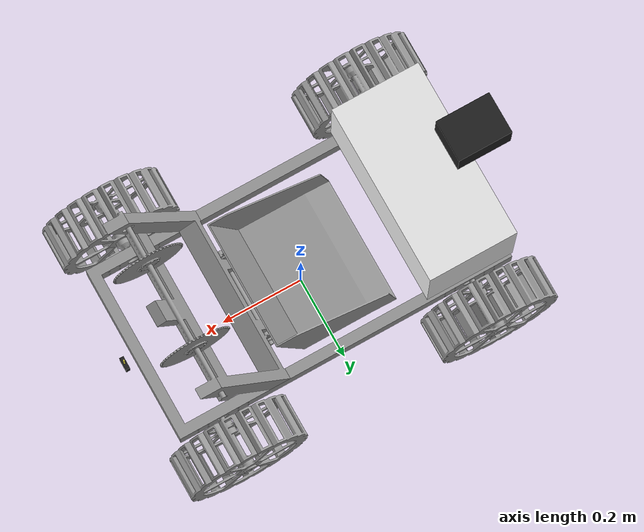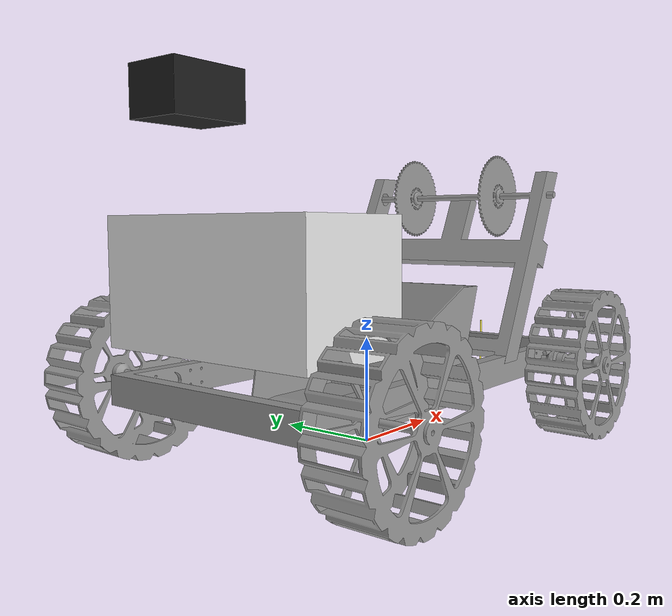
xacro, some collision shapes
<?xml version="1.0"?>
<robot xmlns:xacro="http://www.ros.org/wiki/xacro">

    <xacro:property name="collision_multiplier" value="1.5" />

    <xacro:property name="limit_effort" value="100" />
    <xacro:property name="limit_velocity" value="10" />

    <xacro:property name="electrical_length" value="0.2159" /> <!-- depth -->
    <xacro:property name="electrical_height" value="0.2159" />
    <xacro:property name="electrical_width" value="${chassis_width}" />

    <xacro:property name="bucket_length" value="0.3556" /> <!-- depth -->
    <xacro:property name="bucket_height" value="0.254" />
    <xacro:property name="bucket_width" value="0.254" />
    <xacro:property name="bucket_mass" value="1.68" />

    <xacro:property name="bucket_frame_length" value="0.1524" /> <!-- depth -->
    <xacro:property name="bucket_frame_height" value="0.4064" />
    <xacro:property name="bucket_frame_width" value="${chassis_width}" />
    <xacro:property name="bucket_frame_offset" value="${chassis_length/2 + buckets_width/10}" />

    <xacro:property name="chassis_length" value="0.8382" />
    <xacro:property name="chassis_height" value="0.0508" />
    <xacro:property name="chassis_width" value="0.4318" />
    <xacro:property name="chassis_mass" value="7.8" /> <!-- with motors -->

    <xacro:property name="lidar_length" value="0.12954" />
    <xacro:property name="lidar_height" value="0.07874" />
    <xacro:property name="lidar_width" value="0.09906" />

    <xacro:property name="mesh_scale" value="0.001 0.001 0.001" />

    <xacro:property name="wheel_gap" value="0.0127" />
    <xacro:property name="wheel_length" value="0.1016" />
    <xacro:property name="wheel_radius" value="0.14224" />
    <xacro:property name="wheel_mass" value="1.451" />
    <xacro:property name="wheel_mesh_file" value="file://$(find osprey_ros)/meshes/robot24/wheel.dae" />
    <xacro:property name="wheel_offset_front" value="${chassis_length/2 - 0.1024}" />
    <xacro:property name="wheel_offset_rear" value="${-chassis_length/2 + 0.1024}" />
    <xacro:property name="wheel_offset_left" value="${wheel_length/2 + chassis_width/2 + wheel_gap}" />
    <xacro:property name="wheel_offset_right" value="-${wheel_length/2 + chassis_width/2 + wheel_gap*2}" />

    <link name="base_link"></link>

    <joint name="base_footprint_joint" type="fixed">
        <parent link="base_link"/>
        <child link="base_footprint"/>
    </joint>
    <link name="base_footprint">
        <parent link="base_link"/>
    </link>

    <!-- Main Body/Chassis -->
    <joint name="chassis_joint" type="fixed">
        <parent link="base_link"/>
        <origin xyz="0 0 ${wheel_radius}" rpy="0 0 0"/>
        <child link="chassis"/>
    </joint>
    <link name="chassis">
        <collision>
            <geometry>
                <box size="${chassis_length * collision_multiplier} ${chassis_width * collision_multiplier} ${chassis_height}"/>
            </geometry>
        </collision>
        <visual>
            <geometry>
                <mesh filename="file://$(find osprey_ros)/meshes/robot24/chassis.dae" scale="${mesh_scale}" />
            </geometry>
            <material name="gray"/>
        </visual>
        <xacro:inertial_box mass="${chassis_mass}" x="${chassis_length}" y="${chassis_width}" z="${chassis_height}">
            <origin xyz="0 0 0" rpy="0 0 0"/>
        </xacro:inertial_box>
    </link>

    <!-- Front Left Wheel -->
    <joint name="front_left_wheel_joint" type="continuous">
        <parent link="chassis"/>
        <child link="front_left_wheel"/>
        <origin xyz="${wheel_offset_front} ${wheel_offset_left} 0" rpy="-${pi/2} 0 0"/>
        <axis xyz="0 0 1"/>
        <limit effort="${limit_effort}" velocity="${limit_velocity}"/>
    </joint>
    <link name="front_left_wheel">
        <collision>
            <geometry>
                <cylinder length="${wheel_length * collision_multiplier}" radius="${wheel_radius}" />
            </geometry>
        </collision>
        <visual>
            <origin xyz="0 0 0" rpy="-${pi/2} 0 0"/>
            <geometry>
                <mesh filename="${wheel_mesh_file}" scale="${mesh_scale}" />
            </geometry>
            <material name="gray"/>
        </visual>
        <xacro:inertial_cylinder mass="${wheel_mass}" length="${wheel_length}" radius="${wheel_radius}">
            <origin xyz="0 0 0" rpy="0 0 0"/>
        </xacro:inertial_cylinder>
    </link>

    <!-- Front Right Wheel -->
    <joint name="front_right_wheel_joint" type="continuous">
        <parent link="chassis"/>
        <child link="front_right_wheel"/>
        <origin xyz="${wheel_offset_front} ${wheel_offset_right} 0" rpy="${pi/2} 0 0"/>
        <axis xyz="0 0 -1"/>
        <limit effort="${limit_effort}" velocity="${limit_velocity}"/>
    </joint>
    <link name="front_right_wheel">
        <collision>
            <geometry>
                <cylinder length="${wheel_length * collision_multiplier}" radius="${wheel_radius}" />
            </geometry>
        </collision>
        <visual>
            <origin xyz="0 0 0" rpy="-${pi/2} 0 0"/>
            <geometry>
                <mesh filename="${wheel_mesh_file}" scale="${mesh_scale}" />
            </geometry>
            <material name="gray"/>
        </visual>
        <xacro:inertial_cylinder mass="${wheel_mass}" length="${wheel_length}" radius="${wheel_radius}">
            <origin xyz="0 0 0" rpy="0 0 0"/>
        </xacro:inertial_cylinder>
    </link>

    <!-- Rear Left Wheel -->
    <joint name="rear_left_wheel_joint" type="continuous">
        <parent link="chassis"/>
        <child link="rear_left_wheel"/>
        <origin xyz="${wheel_offset_rear} ${wheel_offset_left} 0" rpy="-${pi/2} 0 0"/>
        <axis xyz="0 0 1"/>
        <limit effort="${limit_effort}" velocity="${limit_velocity}"/>
    </joint>
    <link name="rear_left_wheel">
        <collision>
            <geometry>
                <cylinder length="${wheel_length * collision_multiplier}" radius="${wheel_radius}" />
            </geometry>
        </collision>
        <visual>
            <origin xyz="0 0 0" rpy="-${pi/2} 0 0"/>
            <geometry>
                <mesh filename="${wheel_mesh_file}" scale="${mesh_scale}" />
            </geometry>
            <material name="gray"/>
        </visual>
        <xacro:inertial_cylinder mass="${wheel_mass}" length="${wheel_length}" radius="${wheel_radius}">
            <origin xyz="0 0 0" rpy="0 0 0"/>
        </xacro:inertial_cylinder>
    </link>

    <!-- Rear Right Wheel -->
    <joint name="rear_right_wheel_joint" type="continuous">
        <parent link="chassis"/>
        <child link="rear_right_wheel"/>
        <origin xyz="${wheel_offset_rear} ${wheel_offset_right} 0" rpy="${pi/2} 0 0"/>
        <axis xyz="0 0 -1"/>
        <limit effort="${limit_effort}" velocity="${limit_velocity}"/>
    </joint>
    <link name="rear_right_wheel">
        <collision>
            <geometry>
                <cylinder length="${wheel_length * collision_multiplier}" radius="${wheel_radius}" />
            </geometry>
        </collision>
        <visual>
            <origin xyz="0 0 0" rpy="-${pi/2} 0 0"/>
            <geometry>
                <mesh filename="${wheel_mesh_file}" scale="${mesh_scale}" />
            </geometry>
            <material name="gray"/>
        </visual>
        <xacro:inertial_cylinder mass="${wheel_mass}" length="${wheel_length}" radius="${wheel_radius}">
            <origin xyz="0 0 0" rpy="0 0 0"/>
        </xacro:inertial_cylinder>
    </link>

    <!-- Bucket Frame -->
    <joint name="bucket_frame_joint" type="fixed">
        <parent link="chassis"/>
        <child link="bucket_frame"/>
        <origin xyz="${chassis_length/4 + 0.0381} -0.00635 ${wheel_radius + 0.0277}" rpy="0 0 0"/>
    </joint>
    <link name="bucket_frame">
        <collision>
            <geometry>
                <box size="${bucket_frame_length * collision_multiplier} ${bucket_frame_width * collision_multiplier} ${bucket_frame_height}"/>
            </geometry>
            <material name="gray"/>
        </collision>
        <visual>
            <geometry>
                <mesh filename="file://$(find osprey_ros)/meshes/robot24/exc_dep_frame.dae" scale="${mesh_scale}" />
            </geometry>
            <material name="gray"/>
        </visual>
        <xacro:inertial_box mass="1.5" x="${bucket_frame_length}" y="${bucket_frame_width}" z="${bucket_frame_height}">
            <origin xyz="0 0 ${bucket_frame_height/2}" rpy="0 0 0"/>
        </xacro:inertial_box>
    </link>

    <!-- Dig/Dump Bucket -->
    <joint name="bucket_joint" type="prismatic">
        <parent link="bucket_frame"/>
        <child link="bucket"/>
        <limit lower="-1"  upper="2"  velocity="0.1"  effort="${limit_effort}"  />
        <axis xyz="0 0 1"/>
        <origin xyz="-${bucket_length/2 + bucket_frame_length/2} 0 -${bucket_height/2}" rpy="0 0 0"/>
    </joint>
    <link name="bucket">
        <collision>
            <geometry>
                <box size="${bucket_length} ${bucket_width} ${bucket_height}"/>
            </geometry>
        </collision>
        <visual>
            <geometry>
                <mesh filename="file://$(find osprey_ros)/meshes/robot24/bucket.dae" scale="${mesh_scale}" />
            </geometry>
            <material name="gray"/>
        </visual>
        <xacro:inertial_box mass="${bucket_mass}" x="${bucket_length}" y="${bucket_width}" z="${bucket_height}">
            <origin xyz="${chassis_length/2} 0 ${bucket_height/2}" rpy="0 0 0"/>
        </xacro:inertial_box>
    </link>

    <!-- Electrical Box -->
    <joint name="electrical_joint" type="fixed">
        <parent link="chassis"/>
        <child link="electrical"/>
        <origin xyz="-${chassis_length/2 - electrical_length/1.95} -0.006 ${wheel_radius + chassis_height/1.4}" rpy="0 0 0"/>
    </joint>
    <link name="electrical">
        <collision>
            <geometry>
                <box size="${electrical_length * collision_multiplier} ${electrical_width * collision_multiplier} ${electrical_height}"/>
            </geometry>
            <material name="white"/>
        </collision>
        <visual>
            <geometry>
                <box size="${electrical_length} ${electrical_width} ${electrical_height}"/>
            </geometry>
            <material name="white"/>
        </visual>
        <xacro:inertial_box mass="0.1" x="${electrical_length}" y="${electrical_width}" z="${electrical_height}">
            <origin xyz="0 0 ${electrical_height/2}" rpy="0 0 0"/>
        </xacro:inertial_box>
    </link>

    <!-- 360 Lidar -->
    <joint name="lidar_joint" type="fixed">
        <parent link="chassis"/>
        <child link="lidar"/>
        <axis xyz="0 0 1"/>
        <origin xyz="-${chassis_length/2} 0 0.4572" rpy="0 0 0"/>
    </joint>
    <link name="lidar">
        <collision>
            <geometry>
                <box size="${lidar_length} ${lidar_width} ${lidar_height}"/>
            </geometry>
        </collision>
        <visual>
            <geometry>
                <mesh filename="file://$(find osprey_ros)/meshes/rplidar.dae" scale="1 1 1" />
            </geometry>
            <material name="black"/>
        </visual>
        <xacro:inertial_box mass="0.0001" x="${lidar_length}" y="${lidar_width}" z="0.6096">
            <origin xyz="${lidar_length/2} ${lidar_width/2} 0.6096" rpy="0 0 0"/>
        </xacro:inertial_box>
    </link>

    <!-- 3D Camera -->
    <joint name="depth_camera_joint" type="fixed">
        <parent link="chassis"/>
        <child link="depth_camera"/>
        <origin xyz="${chassis_length/2 + 0.0254} 0 0" rpy="0 0 0"/>
    </joint>
    <link name="depth_camera">
        <visual>
            <geometry>
                <box size="0.010 0.03 0.03"/>
            </geometry>
            <material name="black"/>
        </visual>
        <visual>
            <origin xyz="0 0 0"/>
            <geometry>
                <cylinder radius="0.002" length="0.1"/>
            </geometry>
        </visual>
    </link>

</robot>
